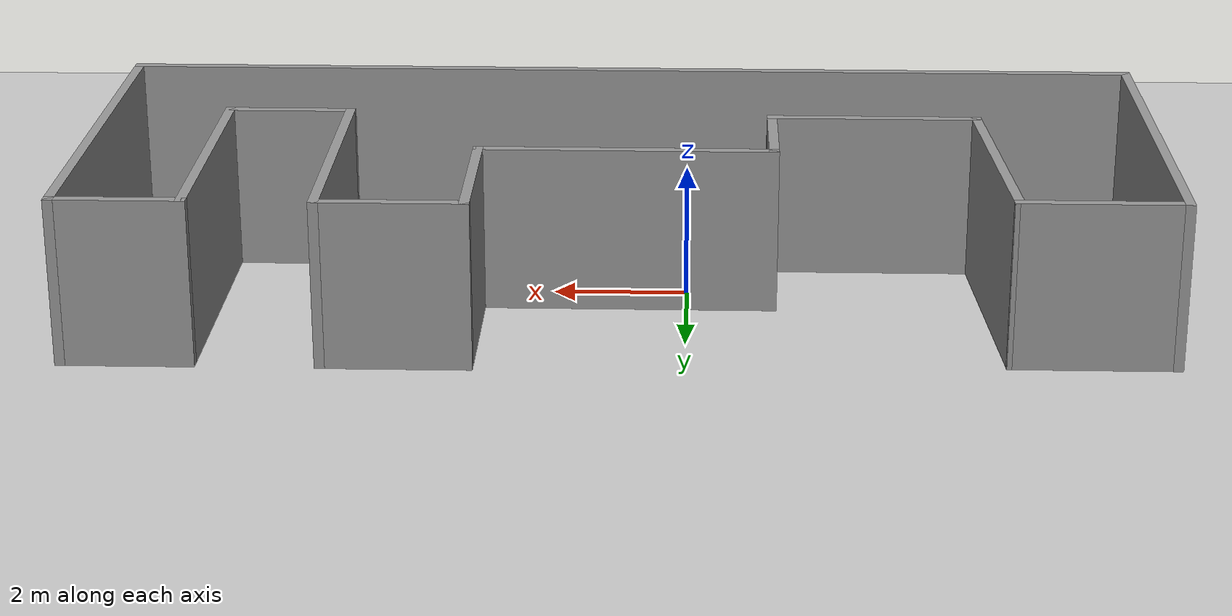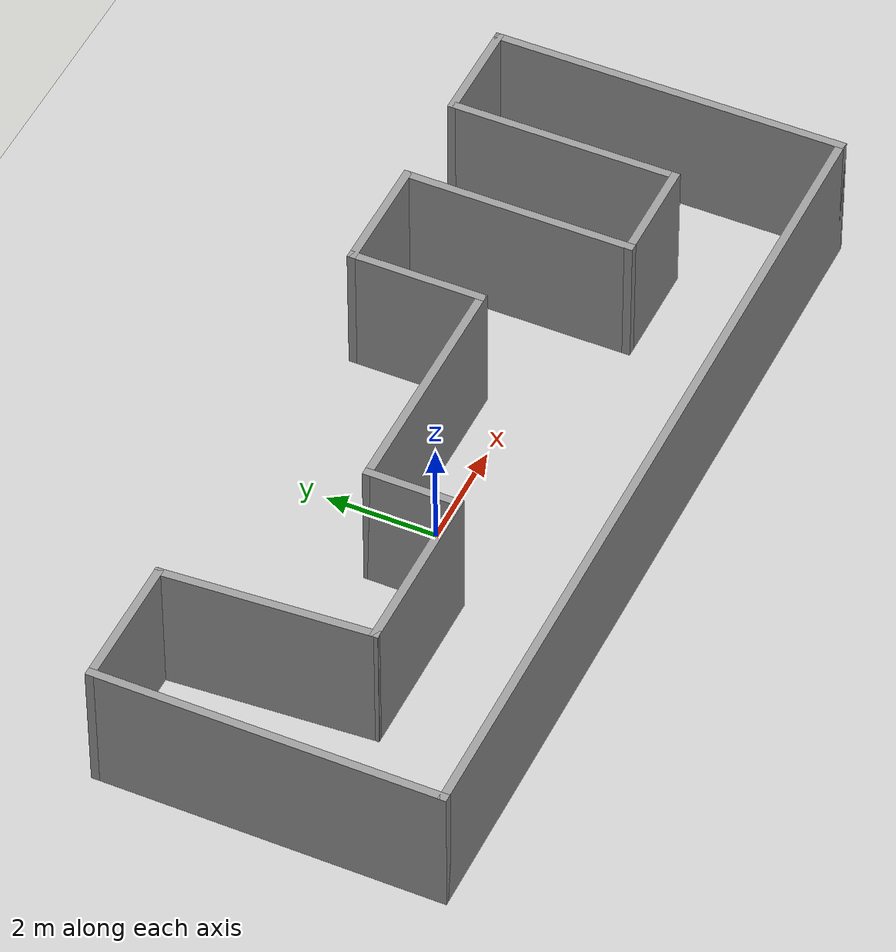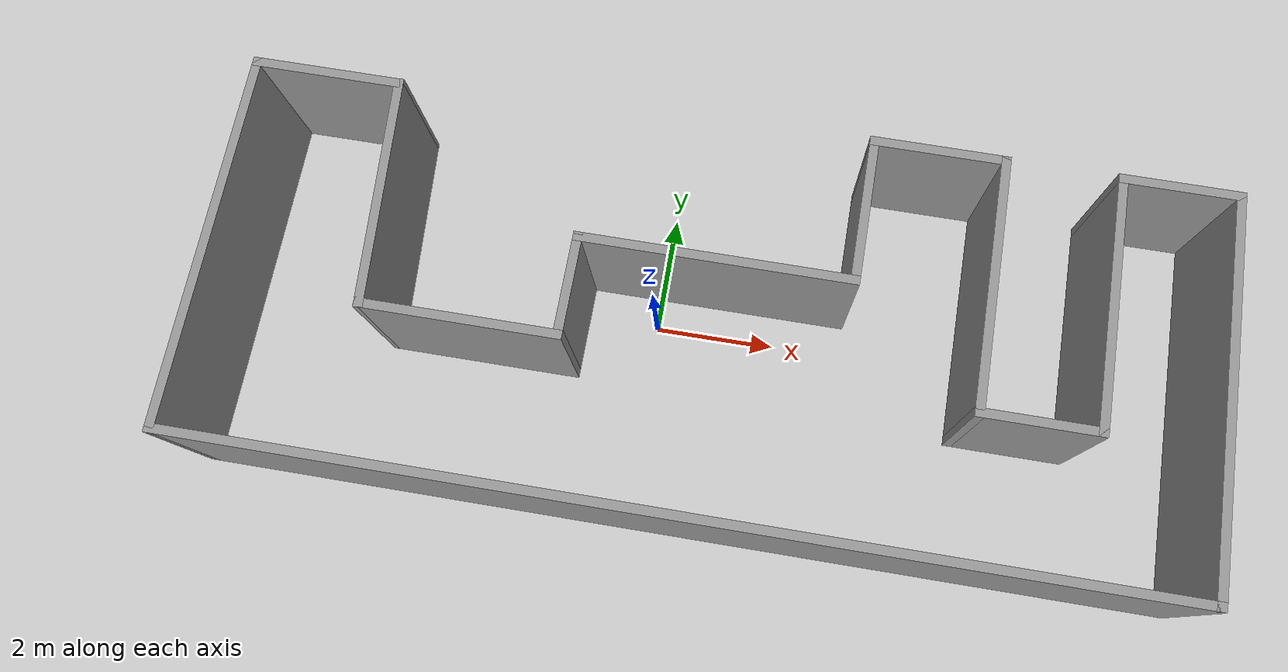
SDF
<sdf version="1.6">
 <world name="default">
  <model name="ground_plane">
   <static>1</static>
   <link name="link">
    <collision name="collision">
     <geometry><plane><normal>0 0 1</normal><size>100 100</size></plane></geometry>
     <surface>
      <contact><collide_bitmask>65535</collide_bitmask></contact>
      <friction><ode><mu>100</mu><mu2>50</mu2></ode></friction>
     </surface>
    </collision>
    <visual name="visual">
     <cast_shadows>0</cast_shadows>
     <geometry><plane><normal>0 0 1</normal><size>100 100</size></plane></geometry>
     <material>
      <script><uri>file://media/materials/scripts/gazebo.material</uri><name>Gazebo/Grey</name></script>
     </material>
    </visual>
   </link>
  </model>
  <model name="wall_outside">
   <pose>0.954243 -0.222119 0 0 -0 0</pose>
   <link name="Wall_0">
    <collision name="Wall_0_Collision">
     <geometry><box><size>6.25 0.15 2.5</size></box></geometry>
     <pose>0 0 1.25 0 -0 0</pose>
    </collision>
    <visual name="Wall_0_Visual">
     <pose>0 0 1.25 0 -0 0</pose>
     <geometry><box><size>6.25 0.15 2.5</size></box></geometry>
     <material>
      <script><uri>file://media/materials/scripts/gazebo.material</uri><name>Gazebo/Grey</name></script>
      <ambient>1 1 1 1</ambient>
     </material>
     <meta><layer>0</layer></meta>
    </visual>
    <pose>-7.925 -0.125 0 0 0 -1.5708</pose>
   </link>
   <link name="Wall_1">
    <collision name="Wall_1_Collision">
     <geometry><box><size>16 0.15 2.5</size></box></geometry>
     <pose>0 0 1.25 0 -0 0</pose>
    </collision>
    <visual name="Wall_1_Visual">
     <pose>0 0 1.25 0 -0 0</pose>
     <geometry><box><size>16 0.15 2.5</size></box></geometry>
     <material>
      <script><uri>file://media/materials/scripts/gazebo.material</uri><name>Gazebo/Grey</name></script>
      <ambient>1 1 1 1</ambient>
     </material>
     <meta><layer>0</layer></meta>
    </visual>
    <pose>0 -3.175 0 0 -0 0</pose>
   </link>
   <link name="Wall_10">
    <collision name="Wall_10_Collision">
     <geometry><box><size>1.75 0.15 2.5</size></box></geometry>
     <pose>0 0 1.25 0 -0 0</pose>
    </collision>
    <visual name="Wall_10_Visual">
     <pose>0 0 1.25 0 -0 0</pose>
     <geometry><box><size>1.75 0.15 2.5</size></box></geometry>
     <material>
      <script><uri>file://media/materials/scripts/gazebo.material</uri><name>Gazebo/Grey</name></script>
      <ambient>1 1 1 1</ambient>
     </material>
     <meta><layer>0</layer></meta>
    </visual>
    <pose>-2.225 0.025 0 0 0 -1.5708</pose>
   </link>
   <link name="Wall_11">
    <collision name="Wall_11_Collision">
     <geometry><box><size>3.25 0.15 2.5</size></box></geometry>
     <pose>0 0 1.25 0 -0 0</pose>
    </collision>
    <visual name="Wall_11_Visual">
     <pose>0 0 1.25 0 -0 0</pose>
     <geometry><box><size>3.25 0.15 2.5</size></box></geometry>
     <material>
      <script><uri>file://media/materials/scripts/gazebo.material</uri><name>Gazebo/Grey</name></script>
      <ambient>1 1 1 1</ambient>
     </material>
     <meta><layer>0</layer></meta>
    </visual>
    <pose>-3.775 -0.775 0 0 -0 3.14159</pose>
   </link>
   <link name="Wall_16">
    <collision name="Wall_16_Collision">
     <geometry><box><size>2.5 0.15 2.5</size></box></geometry>
     <pose>0 0 1.25 0 -0 0</pose>
    </collision>
    <visual name="Wall_16_Visual">
     <pose>0 0 1.25 0 -0 0</pose>
     <geometry><box><size>2.5 0.15 2.5</size></box></geometry>
     <material>
      <script><uri>file://media/materials/scripts/gazebo.material</uri><name>Gazebo/Grey</name></script>
      <ambient>1 1 1 1</ambient>
     </material>
     <meta><layer>0</layer></meta>
    </visual>
    <pose>-6.75 2.925 0 0 -0 0</pose>
   </link>
   <link name="Wall_17">
    <collision name="Wall_17_Collision">
     <geometry><box><size>3.85844 0.15 2.5</size></box></geometry>
     <pose>0 0 1.25 0 -0 0</pose>
    </collision>
    <visual name="Wall_17_Visual">
     <pose>0 0 1.25 0 -0 0</pose>
     <geometry><box><size>3.85844 0.15 2.5</size></box></geometry>
     <material>
      <script><uri>file://media/materials/scripts/gazebo.material</uri><name>Gazebo/Grey</name></script>
      <ambient>1 1 1 1</ambient>
     </material>
     <meta><layer>0</layer></meta>
    </visual>
    <pose>-5.45 1.075 0 0 0 -1.50333</pose>
   </link>
   <link name="Wall_2">
    <collision name="Wall_2_Collision">
     <geometry><box><size>6.5 0.15 2.5</size></box></geometry>
     <pose>0 0 1.25 0 -0 0</pose>
    </collision>
    <visual name="Wall_2_Visual">
     <pose>0 0 1.25 0 -0 0</pose>
     <geometry><box><size>6.5 0.15 2.5</size></box></geometry>
     <material>
      <script><uri>file://media/materials/scripts/gazebo.material</uri><name>Gazebo/Grey</name></script>
      <ambient>1 1 1 1</ambient>
     </material>
     <meta><layer>0</layer></meta>
    </visual>
    <pose>7.925 0 0 0 -0 1.5708</pose>
   </link>
   <link name="Wall_3">
    <collision name="Wall_3_Collision">
     <geometry><box><size>2 0.15 2.5</size></box></geometry>
     <pose>0 0 1.25 0 -0 0</pose>
    </collision>
    <visual name="Wall_3_Visual">
     <pose>0 0 1.25 0 -0 0</pose>
     <geometry><box><size>2 0.15 2.5</size></box></geometry>
     <material>
      <script><uri>file://media/materials/scripts/gazebo.material</uri><name>Gazebo/Grey</name></script>
      <ambient>1 1 1 1</ambient>
     </material>
     <meta><layer>0</layer></meta>
    </visual>
    <pose>7 3.175 0 0 -0 3.14159</pose>
   </link>
   <link name="Wall_4">
    <collision name="Wall_4_Collision">
     <geometry><box><size>4.25 0.15 2.5</size></box></geometry>
     <pose>0 0 1.25 0 -0 0</pose>
    </collision>
    <visual name="Wall_4_Visual">
     <pose>0 0 1.25 0 -0 0</pose>
     <geometry><box><size>4.25 0.15 2.5</size></box></geometry>
     <material>
      <script><uri>file://media/materials/scripts/gazebo.material</uri><name>Gazebo/Grey</name></script>
      <ambient>1 1 1 1</ambient>
     </material>
     <meta><layer>0</layer></meta>
    </visual>
    <pose>6.075 1.125 0 0 0 -1.5708</pose>
   </link>
   <link name="Wall_5">
    <collision name="Wall_5_Collision">
     <geometry><box><size>2 0.15 2.5</size></box></geometry>
     <pose>0 0 1.25 0 -0 0</pose>
    </collision>
    <visual name="Wall_5_Visual">
     <pose>0 0 1.25 0 -0 0</pose>
     <geometry><box><size>2 0.15 2.5</size></box></geometry>
     <material>
      <script><uri>file://media/materials/scripts/gazebo.material</uri><name>Gazebo/Grey</name></script>
      <ambient>1 1 1 1</ambient>
     </material>
     <meta><layer>0</layer></meta>
    </visual>
    <pose>5.15 -0.925 0 0 -0 3.14159</pose>
   </link>
   <link name="Wall_6">
    <collision name="Wall_6_Collision">
     <geometry><box><size>4.25 0.15 2.5</size></box></geometry>
     <pose>0 0 1.25 0 -0 0</pose>
    </collision>
    <visual name="Wall_6_Visual">
     <pose>0 0 1.25 0 -0 0</pose>
     <geometry><box><size>4.25 0.15 2.5</size></box></geometry>
     <material>
      <script><uri>file://media/materials/scripts/gazebo.material</uri><name>Gazebo/Grey</name></script>
      <ambient>1 1 1 1</ambient>
     </material>
     <meta><layer>0</layer></meta>
    </visual>
    <pose>4.225 1.125 0 0 -0 1.5708</pose>
   </link>
   <link name="Wall_7">
    <collision name="Wall_7_Collision">
     <geometry><box><size>2.25 0.15 2.5</size></box></geometry>
     <pose>0 0 1.25 0 -0 0</pose>
    </collision>
    <visual name="Wall_7_Visual">
     <pose>0 0 1.25 0 -0 0</pose>
     <geometry><box><size>2.25 0.15 2.5</size></box></geometry>
     <material>
      <script><uri>file://media/materials/scripts/gazebo.material</uri><name>Gazebo/Grey</name></script>
      <ambient>1 1 1 1</ambient>
     </material>
     <meta><layer>0</layer></meta>
    </visual>
    <pose>3.175 3.175 0 0 -0 3.14159</pose>
   </link>
   <link name="Wall_8">
    <collision name="Wall_8_Collision">
     <geometry><box><size>2.5 0.15 2.5</size></box></geometry>
     <pose>0 0 1.25 0 -0 0</pose>
    </collision>
    <visual name="Wall_8_Visual">
     <pose>0 0 1.25 0 -0 0</pose>
     <geometry><box><size>2.5 0.15 2.5</size></box></geometry>
     <material>
      <script><uri>file://media/materials/scripts/gazebo.material</uri><name>Gazebo/Grey</name></script>
      <ambient>1 1 1 1</ambient>
     </material>
     <meta><layer>0</layer></meta>
    </visual>
    <pose>2.125 2 0 0 0 -1.5708</pose>
   </link>
   <link name="Wall_9">
    <collision name="Wall_9_Collision">
     <geometry><box><size>4.5 0.15 2.5</size></box></geometry>
     <pose>0 0 1.25 0 -0 0</pose>
    </collision>
    <visual name="Wall_9_Visual">
     <pose>0 0 1.25 0 -0 0</pose>
     <geometry><box><size>4.5 0.15 2.5</size></box></geometry>
     <material>
      <script><uri>file://media/materials/scripts/gazebo.material</uri><name>Gazebo/Grey</name></script>
      <ambient>1 1 1 1</ambient>
     </material>
     <meta><layer>0</layer></meta>
    </visual>
    <pose>-0.05 0.825 0 0 -0 3.14159</pose>
   </link>
   <static>1</static>
  </model>
 </world>
</sdf>
